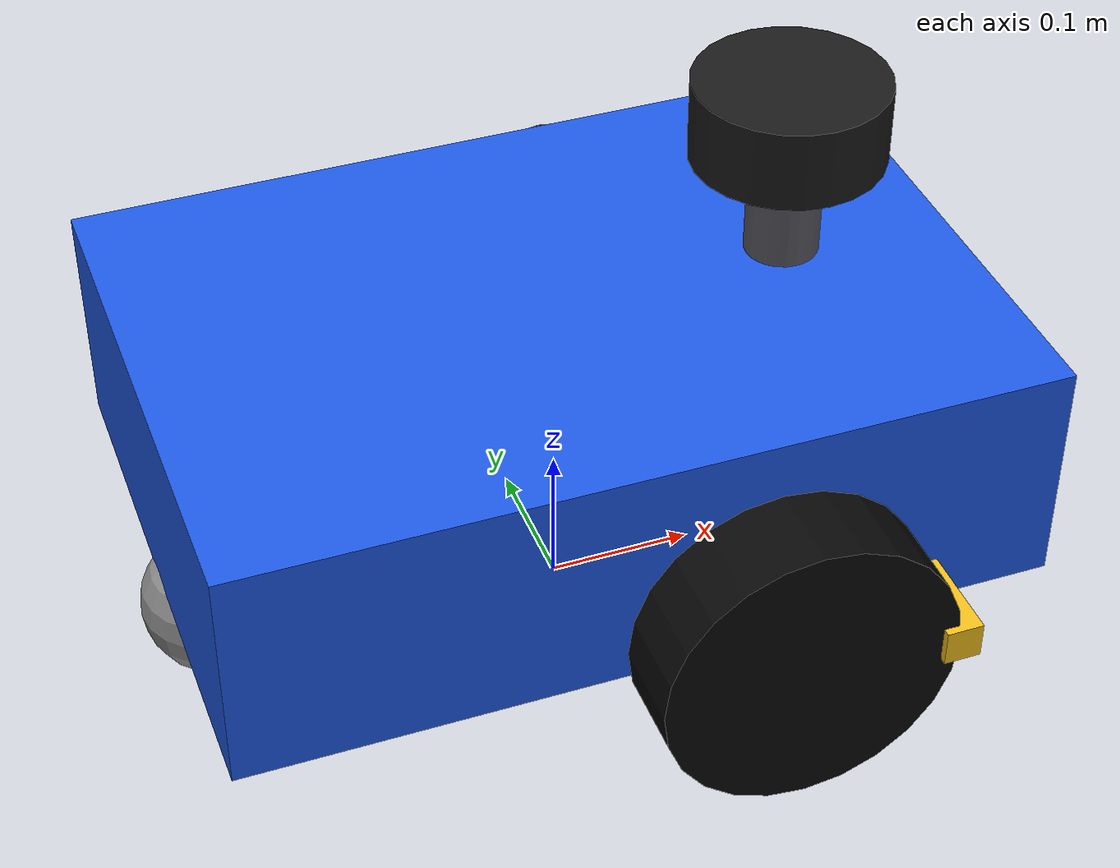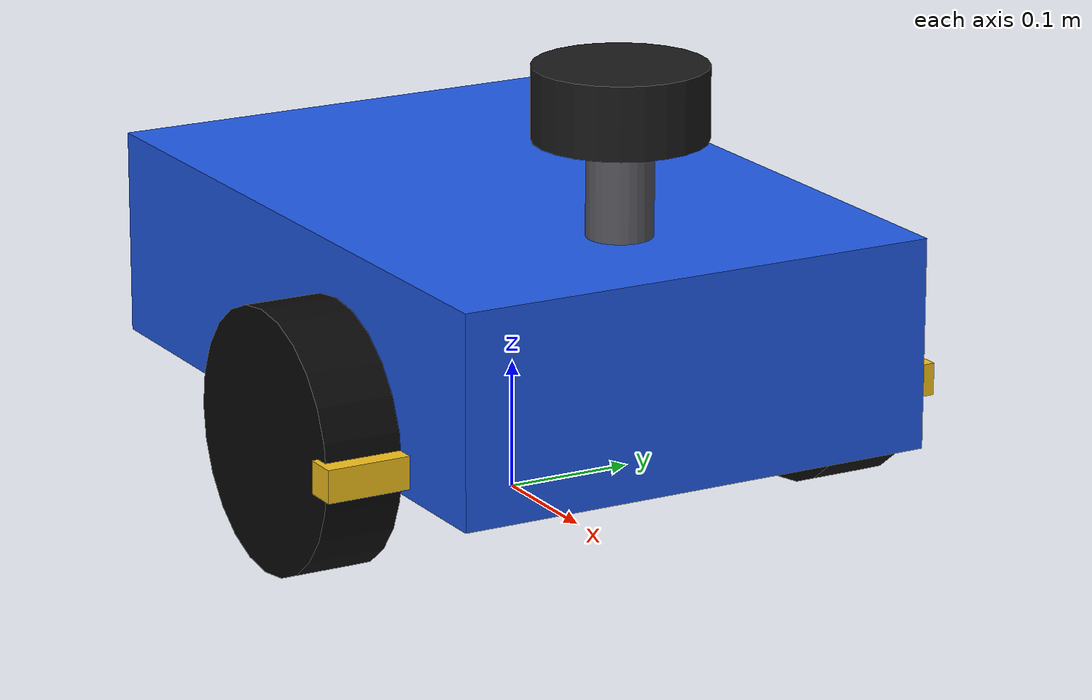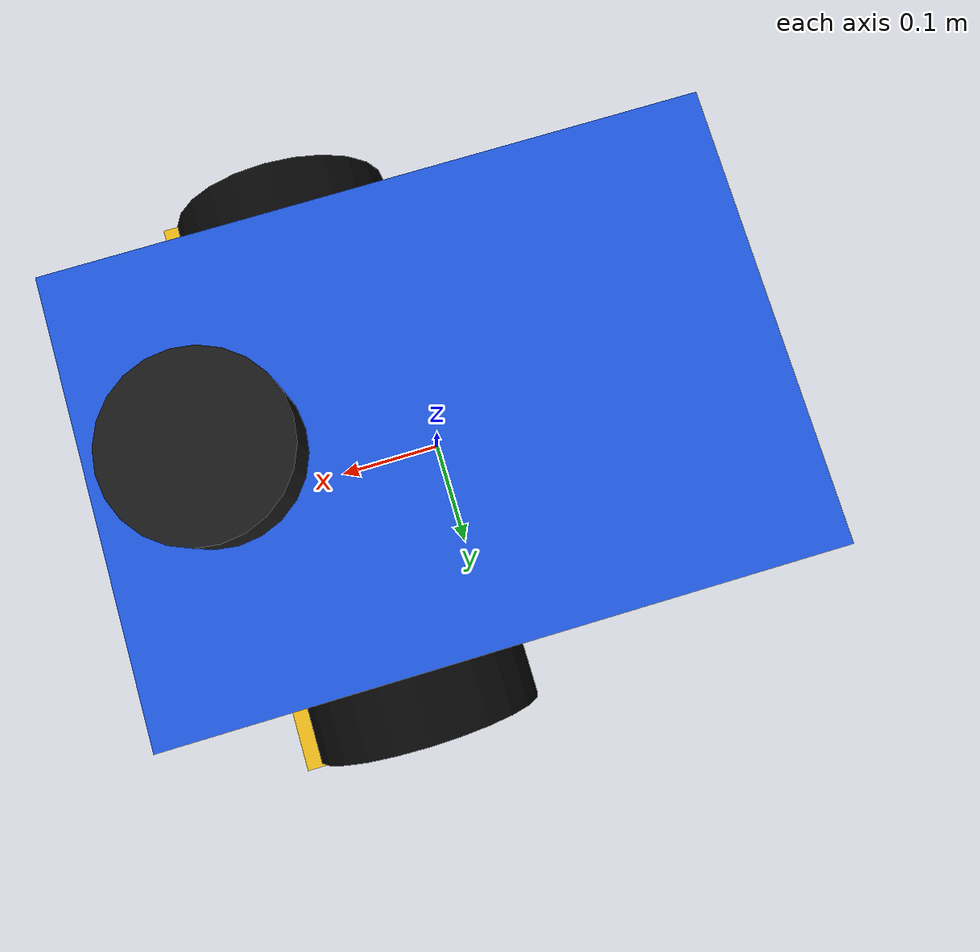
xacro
<?xml version="1.0"?>
<robot name="physics_robot" xmlns:xacro="http://www.ros.org/wiki/xacro">
  <xacro:include filename="components/base_footprint_component.xacro"/>
  <xacro:include filename="components/base_component.xacro"/>
  <xacro:include filename="components/wheel_component.xacro"/>
  <xacro:include filename="components/caster_component.xacro"/>
  <xacro:include filename="components/lidar_component.xacro"/>

<xacro:include filename="components/gazebo_extensions.xacro"/>

  <xacro:base_footprint_component/>
  <xacro:base_component with_physics="true"/>
  <xacro:wheel_component side="left" y_position="0.22" with_physics="true"/>
  <xacro:wheel_component side="right" y_position="-0.22" with_physics="true"/>
  <xacro:caster_component with_physics="true"/>
  <xacro:lidar_component with_physics="true"/>
</robot>

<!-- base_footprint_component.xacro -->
<robot xmlns:xacro="http://www.ros.org/wiki/xacro">
  <xacro:macro name="base_footprint_component" params="">
    <!-- 辅助坐标 link 没有尺寸、颜色和物理属性。 -->
    <link name="base_footprint"/>
  </xacro:macro>
</robot>

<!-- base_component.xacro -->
<robot xmlns:xacro="http://www.ros.org/wiki/xacro">
  <!-- 车体需要的参数就在车体文件里。 -->
  <xacro:property name="base_length" value="0.55"/>
  <xacro:property name="base_width" value="0.38"/>
  <xacro:property name="base_height" value="0.16"/>
  <xacro:property name="base_link_z" value="0.16"/>

  <xacro:macro name="base_component" params="with_physics">
    <link name="base_link">
      <visual>
        <origin xyz="0 0 0" rpy="0 0 0"/>
        <geometry>
          <box size="${base_length} ${base_width} ${base_height}"/>
        </geometry>
        <!-- 颜色也直接留在车体组件中。 -->
        <material name="base_blue">
          <color rgba="0.12 0.35 0.90 1.0"/>
        </material>
      </visual>

      <xacro:if value="${with_physics}">
        <collision>
          <origin xyz="0 0 0" rpy="0 0 0"/>
          <geometry>
            <box size="${base_length} ${base_width} ${base_height}"/>
          </geometry>
        </collision>
        <inertial>
          <origin xyz="-0.04 0 0" rpy="0 0 0"/>
          <mass value="5.0"/>
          <inertia ixx="0.0708" ixy="0.0" ixz="0.0"
                   iyy="0.1367" iyz="0.0" izz="0.1862"/>
        </inertial>
      </xacro:if>
    </link>

    <joint name="base_footprint_joint" type="fixed">
      <parent link="base_footprint"/>
      <child link="base_link"/>
      <origin xyz="0 0 ${base_link_z}" rpy="0 0 0"/>
    </joint>
  </xacro:macro>
</robot>

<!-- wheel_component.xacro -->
<robot xmlns:xacro="http://www.ros.org/wiki/xacro">
  <xacro:property name="wheel_radius" value="0.10"/>
  <xacro:property name="wheel_width" value="0.06"/>
  <xacro:property name="wheel_marker_width" value="0.07"/>
  <xacro:property name="wheel_x" value="0.08"/>
  <xacro:property name="wheel_joint_z" value="-0.06"/>

  <xacro:macro name="wheel_component" params="side y_position with_physics">
    <link name="${side}_wheel_link">
      <visual>
        <origin xyz="0 0 0" rpy="1.5708 0 0"/>
        <geometry>
          <cylinder radius="${wheel_radius}" length="${wheel_width}"/>
        </geometry>
        <material name="${side}_wheel_black">
          <color rgba="0.03 0.03 0.03 1.0"/>
        </material>
      </visual>

      <visual name="rotation_marker">
        <origin xyz="${wheel_radius} 0 0" rpy="0 0 0"/>
        <geometry>
          <box size="0.025 ${wheel_marker_width} 0.025"/>
        </geometry>
        <material name="${side}_marker_yellow">
          <color rgba="0.95 0.75 0.10 1.0"/>
        </material>
      </visual>

      <xacro:if value="${with_physics}">
        <collision>
          <origin xyz="0 0 0" rpy="1.5708 0 0"/>
          <geometry>
            <cylinder radius="${wheel_radius}" length="${wheel_width}"/>
          </geometry>
        </collision>
        <inertial>
          <mass value="0.45"/>
          <inertia ixx="0.00126" ixy="0.0" ixz="0.0"
                   iyy="0.00225" iyz="0.0" izz="0.00126"/>
        </inertial>
      </xacro:if>
    </link>

    <joint name="${side}_wheel_joint" type="continuous">
      <parent link="base_link"/>
      <child link="${side}_wheel_link"/>
      <origin xyz="${wheel_x} ${y_position} ${wheel_joint_z}" rpy="0 0 0"/>
      <axis xyz="0 1 0"/>
    </joint>
  </xacro:macro>
</robot>

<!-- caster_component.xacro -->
<robot xmlns:xacro="http://www.ros.org/wiki/xacro">
  <xacro:property name="caster_radius" value="0.05"/>
  <xacro:property name="caster_x" value="-0.24"/>
  <xacro:property name="caster_joint_z" value="-0.11"/>

  <xacro:macro name="caster_component" params="with_physics">
    <link name="caster_link">
      <visual>
        <geometry><sphere radius="${caster_radius}"/></geometry>
        <material name="caster_gray">
          <color rgba="0.55 0.55 0.55 1.0"/>
        </material>
      </visual>

      <xacro:if value="${with_physics}">
        <collision>
          <geometry><sphere radius="${caster_radius}"/></geometry>
        </collision>
        <inertial>
          <mass value="0.20"/>
          <inertia ixx="0.00020" ixy="0.0" ixz="0.0"
                   iyy="0.00020" iyz="0.0" izz="0.00020"/>
        </inertial>
      </xacro:if>
    </link>

    <joint name="caster_joint" type="fixed">
      <parent link="base_link"/>
      <child link="caster_link"/>
      <origin xyz="${caster_x} 0 ${caster_joint_z}" rpy="0 0 0"/>
    </joint>
  </xacro:macro>
</robot>

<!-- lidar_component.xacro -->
<robot xmlns:xacro="http://www.ros.org/wiki/xacro">
  <xacro:property name="lidar_x" value="0.16"/>
  <xacro:property name="lidar_support_radius" value="0.025"/>
  <xacro:property name="lidar_support_length" value="0.08"/>
  <xacro:property name="lidar_support_z" value="0.12"/>
  <xacro:property name="lidar_z_from_support" value="0.06"/>
  <xacro:property name="lidar_radius" value="0.065"/>
  <xacro:property name="lidar_height" value="0.055"/>

  <xacro:macro name="lidar_component" params="with_physics">
    <link name="lidar_support_link">
      <visual>
        <geometry>
          <cylinder radius="${lidar_support_radius}" length="${lidar_support_length}"/>
        </geometry>
        <material name="lidar_support_gray">
          <color rgba="0.35 0.35 0.38 1.0"/>
        </material>
      </visual>
      <xacro:if value="${with_physics}">
        <collision>
          <geometry>
            <cylinder radius="${lidar_support_radius}" length="${lidar_support_length}"/>
          </geometry>
        </collision>
        <inertial>
          <mass value="0.10"/>
          <inertia ixx="0.000069" ixy="0.0" ixz="0.0"
                   iyy="0.000069" iyz="0.0" izz="0.000031"/>
        </inertial>
      </xacro:if>
    </link>
    <joint name="lidar_support_joint" type="fixed">
      <parent link="base_link"/>
      <child link="lidar_support_link"/>
      <origin xyz="${lidar_x} 0 ${lidar_support_z}" rpy="0 0 0"/>
    </joint>

    <link name="lidar_link">
      <visual>
        <geometry>
          <cylinder radius="${lidar_radius}" length="${lidar_height}"/>
        </geometry>
        <material name="lidar_dark">
          <color rgba="0.10 0.10 0.10 1.0"/>
        </material>
      </visual>
      <xacro:if value="${with_physics}">
        <collision>
          <geometry>
            <cylinder radius="${lidar_radius}" length="${lidar_height}"/>
          </geometry>
        </collision>
        <inertial>
          <mass value="0.20"/>
          <inertia ixx="0.000262" ixy="0.0" ixz="0.0"
                   iyy="0.000262" iyz="0.0" izz="0.000423"/>
        </inertial>
      </xacro:if>
    </link>
    <joint name="lidar_joint" type="fixed">
      <parent link="lidar_support_link"/>
      <child link="lidar_link"/>
      <origin xyz="0 0 ${lidar_z_from_support}" rpy="0 0 0"/>
    </joint>
  </xacro:macro>
</robot>
